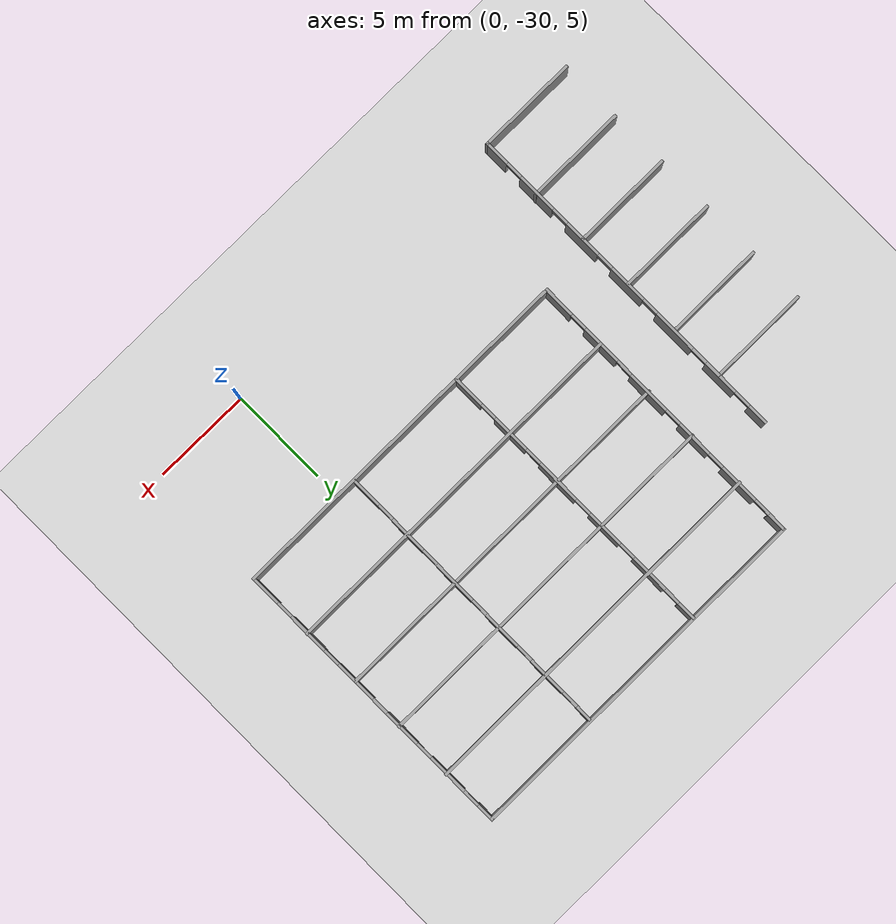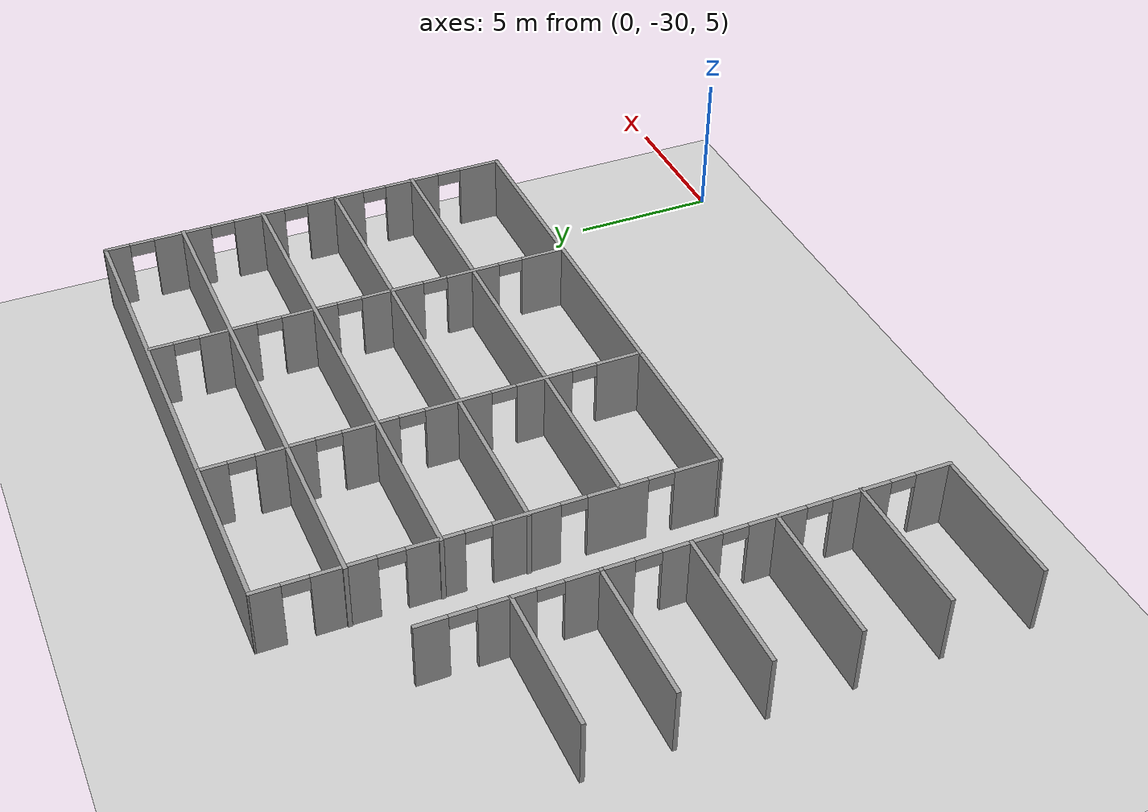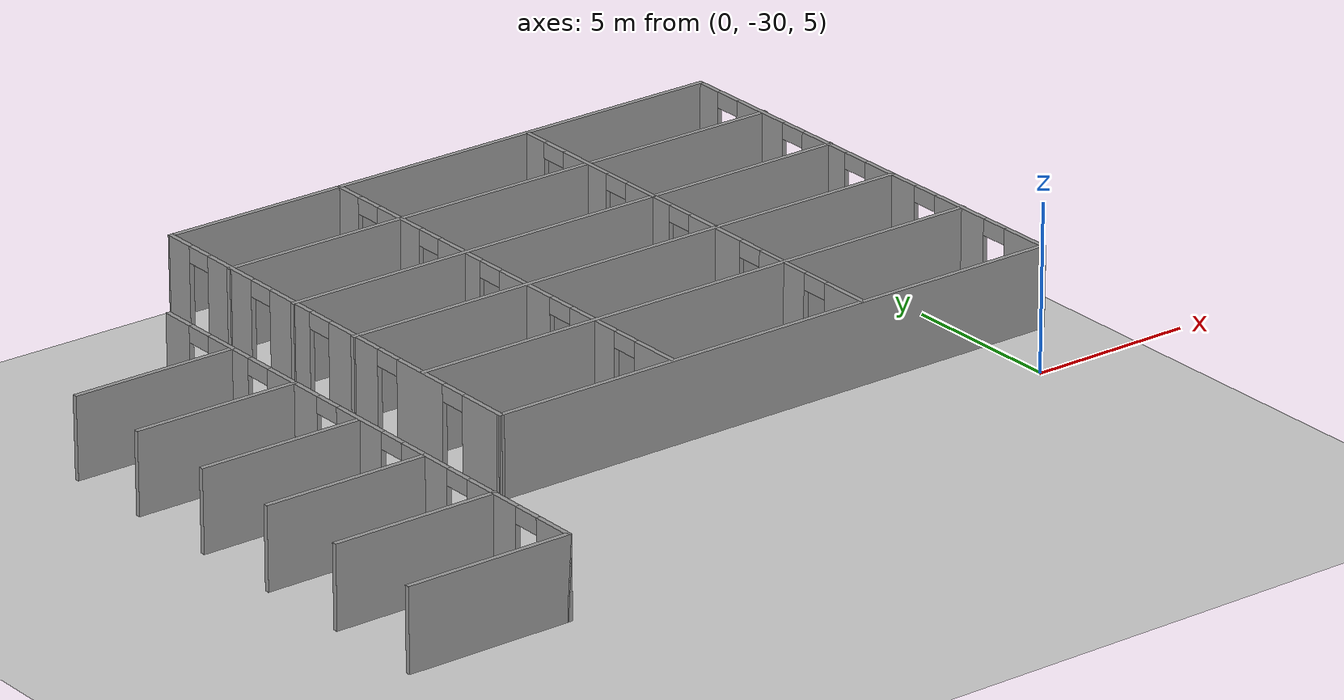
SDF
<sdf version="1.6">
 <world name="default">
  <model name="ground_plane">
   <static>1</static>
   <link name="link">
    <collision name="collision">
     <geometry><plane><normal>0 0 1</normal><size>100 100</size></plane></geometry>
     <surface>
      <contact><collide_bitmask>65535</collide_bitmask></contact>
      <friction><ode><mu>100</mu><mu2>50</mu2></ode></friction>
     </surface>
    </collision>
    <visual name="visual">
     <cast_shadows>0</cast_shadows>
     <geometry><plane><normal>0 0 1</normal><size>100 100</size></plane></geometry>
     <material>
      <script><uri>file://media/materials/scripts/gazebo.material</uri><name>Gazebo/Grey</name></script>
     </material>
    </visual>
   </link>
  </model>
  <model name="5x3_Cubicles_2">
   <pose>-4.05874 -15.979 2.74512 0 -0 0</pose>
   <link name="Wall_0">
    <pose>-9.39351 -0 0 0 -0 -1.57435</pose>
    <visual name="Wall_0_Visual_0">
     <pose>-7.27295 0 1.25 0 -0 0</pose>
     <geometry><box><size>1.03181 0.15 2.5</size></box></geometry>
     <material>
      <script><uri>file://media/materials/scripts/gazebo.material</uri><name>Gazebo/Grey</name></script>
      <ambient>1 1 1 1</ambient>
     </material>
     <meta><layer>0</layer></meta>
    </visual>
    <collision name="Wall_0_Collision_0">
     <geometry><box><size>1.03181 0.15 2.5</size></box></geometry>
     <pose>-7.27295 0 1.25 0 -0 0</pose>
    </collision>
    <visual name="Wall_0_Visual_1">
     <pose>-4.8086 0 1.25 0 -0 0</pose>
     <geometry><box><size>2.09689 0.15 2.5</size></box></geometry>
     <material>
      <script><uri>file://media/materials/scripts/gazebo.material</uri><name>Gazebo/Grey</name></script>
      <ambient>1 1 1 1</ambient>
     </material>
     <meta><layer>0</layer></meta>
    </visual>
    <collision name="Wall_0_Collision_1">
     <geometry><box><size>2.09689 0.15 2.5</size></box></geometry>
     <pose>-4.8086 0 1.25 0 -0 0</pose>
    </collision>
    <visual name="Wall_0_Visual_2">
     <pose>-1.91379 0 1.25 0 -0 0</pose>
     <geometry><box><size>1.89272 0.15 2.5</size></box></geometry>
     <material>
      <script><uri>file://media/materials/scripts/gazebo.material</uri><name>Gazebo/Grey</name></script>
      <ambient>1 1 1 1</ambient>
     </material>
     <meta><layer>0</layer></meta>
    </visual>
    <collision name="Wall_0_Collision_2">
     <geometry><box><size>1.89272 0.15 2.5</size></box></geometry>
     <pose>-1.91379 0 1.25 0 -0 0</pose>
    </collision>
    <visual name="Wall_0_Visual_3">
     <pose>1.06918 0 1.25 0 -0 0</pose>
     <geometry><box><size>2.27323 0.15 2.5</size></box></geometry>
     <material>
      <script><uri>file://media/materials/scripts/gazebo.material</uri><name>Gazebo/Grey</name></script>
      <ambient>1 1 1 1</ambient>
     </material>
     <meta><layer>0</layer></meta>
    </visual>
    <collision name="Wall_0_Collision_3">
     <geometry><box><size>2.27323 0.15 2.5</size></box></geometry>
     <pose>1.06918 0 1.25 0 -0 0</pose>
    </collision>
    <visual name="Wall_0_Visual_4">
     <pose>4.14705 0 1.25 0 -0 0</pose>
     <geometry><box><size>2.0825 0.15 2.5</size></box></geometry>
     <material>
      <script><uri>file://media/materials/scripts/gazebo.material</uri><name>Gazebo/Grey</name></script>
      <ambient>1 1 1 1</ambient>
     </material>
     <meta><layer>0</layer></meta>
    </visual>
    <collision name="Wall_0_Collision_4">
     <geometry><box><size>2.0825 0.15 2.5</size></box></geometry>
     <pose>4.14705 0 1.25 0 -0 0</pose>
    </collision>
    <visual name="Wall_0_Visual_5">
     <pose>6.93858 0 1.25 0 -0 0</pose>
     <geometry><box><size>1.70057 0.15 2.5</size></box></geometry>
     <material>
      <script><uri>file://media/materials/scripts/gazebo.material</uri><name>Gazebo/Grey</name></script>
      <ambient>1 1 1 1</ambient>
     </material>
     <meta><layer>0</layer></meta>
    </visual>
    <collision name="Wall_0_Collision_5">
     <geometry><box><size>1.70057 0.15 2.5</size></box></geometry>
     <pose>6.93858 0 1.25 0 -0 0</pose>
    </collision>
    <visual name="Wall_0_Visual_6">
     <pose>-6.30705 0 2.25 0 -0 0</pose>
     <geometry><box><size>0.9 0.15 0.5</size></box></geometry>
     <material>
      <script><uri>file://media/materials/scripts/gazebo.material</uri><name>Gazebo/Grey</name></script>
      <ambient>1 1 1 1</ambient>
     </material>
     <meta><layer>0</layer></meta>
    </visual>
    <collision name="Wall_0_Collision_6">
     <geometry><box><size>0.9 0.15 0.5</size></box></geometry>
     <pose>-6.30705 0 2.25 0 -0 0</pose>
    </collision>
    <visual name="Wall_0_Visual_7">
     <pose>-3.31016 0 2.25 0 -0 0</pose>
     <geometry><box><size>0.9 0.15 0.5</size></box></geometry>
     <material>
      <script><uri>file://media/materials/scripts/gazebo.material</uri><name>Gazebo/Grey</name></script>
      <ambient>1 1 1 1</ambient>
     </material>
     <meta><layer>0</layer></meta>
    </visual>
    <collision name="Wall_0_Collision_7">
     <geometry><box><size>0.9 0.15 0.5</size></box></geometry>
     <pose>-3.31016 0 2.25 0 -0 0</pose>
    </collision>
    <visual name="Wall_0_Visual_8">
     <pose>-0.517433 0 2.25 0 -0 0</pose>
     <geometry><box><size>0.9 0.15 0.5</size></box></geometry>
     <material>
      <script><uri>file://media/materials/scripts/gazebo.material</uri><name>Gazebo/Grey</name></script>
      <ambient>1 1 1 1</ambient>
     </material>
     <meta><layer>0</layer></meta>
    </visual>
    <collision name="Wall_0_Collision_8">
     <geometry><box><size>0.9 0.15 0.5</size></box></geometry>
     <pose>-0.517433 0 2.25 0 -0 0</pose>
    </collision>
    <visual name="Wall_0_Visual_9">
     <pose>2.6558 0 2.25 0 -0 0</pose>
     <geometry><box><size>0.9 0.15 0.5</size></box></geometry>
     <material>
      <script><uri>file://media/materials/scripts/gazebo.material</uri><name>Gazebo/Grey</name></script>
      <ambient>1 1 1 1</ambient>
     </material>
     <meta><layer>0</layer></meta>
    </visual>
    <collision name="Wall_0_Collision_9">
     <geometry><box><size>0.9 0.15 0.5</size></box></geometry>
     <pose>2.6558 0 2.25 0 -0 0</pose>
    </collision>
    <visual name="Wall_0_Visual_10">
     <pose>5.63829 0 2.25 0 -0 0</pose>
     <geometry><box><size>0.9 0.15 0.5</size></box></geometry>
     <material>
      <script><uri>file://media/materials/scripts/gazebo.material</uri><name>Gazebo/Grey</name></script>
      <ambient>1 1 1 1</ambient>
     </material>
     <meta><layer>0</layer></meta>
    </visual>
    <collision name="Wall_0_Collision_10">
     <geometry><box><size>0.9 0.15 0.5</size></box></geometry>
     <pose>5.63829 0 2.25 0 -0 0</pose>
    </collision>
   </link>
   <link name="Wall_10">
    <collision name="Wall_10_Collision">
     <geometry><box><size>19 0.15 2.5</size></box></geometry>
     <pose>0 0 1.25 0 -0 0</pose>
    </collision>
    <visual name="Wall_10_Visual">
     <pose>0 0 1.25 0 -0 0</pose>
     <geometry><box><size>19 0.15 2.5</size></box></geometry>
     <material>
      <script><uri>file://media/materials/scripts/gazebo.material</uri><name>Gazebo/Grey</name></script>
      <ambient>1 1 1 1</ambient>
     </material>
     <meta><layer>0</layer></meta>
    </visual>
    <pose>-0 1.73972 0 0 -0 0</pose>
   </link>
   <link name="Wall_12">
    <collision name="Wall_12_Collision">
     <geometry><box><size>19 0.15 2.5</size></box></geometry>
     <pose>0 0 1.25 0 -0 0</pose>
    </collision>
    <visual name="Wall_12_Visual">
     <pose>0 0 1.25 0 -0 0</pose>
     <geometry><box><size>19 0.15 2.5</size></box></geometry>
     <material>
      <script><uri>file://media/materials/scripts/gazebo.material</uri><name>Gazebo/Grey</name></script>
      <ambient>1 1 1 1</ambient>
     </material>
     <meta><layer>0</layer></meta>
    </visual>
    <pose>0.002757 4.78648 0 0 -0 0</pose>
   </link>
   <link name="Wall_14">
    <pose>3.03244 -0.038205 0 0 -0 -1.57332</pose>
    <visual name="Wall_14_Visual_0">
     <pose>-7.27661 0 1.25 0 -0 0</pose>
     <geometry><box><size>0.887786 0.15 2.5</size></box></geometry>
     <material>
      <script><uri>file://media/materials/scripts/gazebo.material</uri><name>Gazebo/Grey</name></script>
      <ambient>1 1 1 1</ambient>
     </material>
     <meta><layer>0</layer></meta>
    </visual>
    <collision name="Wall_14_Collision_0">
     <geometry><box><size>0.887786 0.15 2.5</size></box></geometry>
     <pose>-7.27661 0 1.25 0 -0 0</pose>
    </collision>
    <visual name="Wall_14_Visual_1">
     <pose>-4.91212 0 1.25 0 -0 0</pose>
     <geometry><box><size>2.04118 0.15 2.5</size></box></geometry>
     <material>
      <script><uri>file://media/materials/scripts/gazebo.material</uri><name>Gazebo/Grey</name></script>
      <ambient>1 1 1 1</ambient>
     </material>
     <meta><layer>0</layer></meta>
    </visual>
    <collision name="Wall_14_Collision_1">
     <geometry><box><size>2.04118 0.15 2.5</size></box></geometry>
     <pose>-4.91212 0 1.25 0 -0 0</pose>
    </collision>
    <visual name="Wall_14_Visual_2">
     <pose>-1.97726 0 1.25 0 -0 0</pose>
     <geometry><box><size>2.02854 0.15 2.5</size></box></geometry>
     <material>
      <script><uri>file://media/materials/scripts/gazebo.material</uri><name>Gazebo/Grey</name></script>
      <ambient>1 1 1 1</ambient>
     </material>
     <meta><layer>0</layer></meta>
    </visual>
    <collision name="Wall_14_Collision_2">
     <geometry><box><size>2.02854 0.15 2.5</size></box></geometry>
     <pose>-1.97726 0 1.25 0 -0 0</pose>
    </collision>
    <visual name="Wall_14_Visual_3">
     <pose>1.09454 0 1.25 0 -0 0</pose>
     <geometry><box><size>2.31505 0.15 2.5</size></box></geometry>
     <material>
      <script><uri>file://media/materials/scripts/gazebo.material</uri><name>Gazebo/Grey</name></script>
      <ambient>1 1 1 1</ambient>
     </material>
     <meta><layer>0</layer></meta>
    </visual>
    <collision name="Wall_14_Collision_3">
     <geometry><box><size>2.31505 0.15 2.5</size></box></geometry>
     <pose>1.09454 0 1.25 0 -0 0</pose>
    </collision>
    <visual name="Wall_14_Visual_4">
     <pose>4.15071 0 1.25 0 -0 0</pose>
     <geometry><box><size>1.9973 0.15 2.5</size></box></geometry>
     <material>
      <script><uri>file://media/materials/scripts/gazebo.material</uri><name>Gazebo/Grey</name></script>
      <ambient>1 1 1 1</ambient>
     </material>
     <meta><layer>0</layer></meta>
    </visual>
    <collision name="Wall_14_Collision_4">
     <geometry><box><size>1.9973 0.15 2.5</size></box></geometry>
     <pose>4.15071 0 1.25 0 -0 0</pose>
    </collision>
    <visual name="Wall_14_Visual_5">
     <pose>6.88493 0 1.25 0 -0 0</pose>
     <geometry><box><size>1.67114 0.15 2.5</size></box></geometry>
     <material>
      <script><uri>file://media/materials/scripts/gazebo.material</uri><name>Gazebo/Grey</name></script>
      <ambient>1 1 1 1</ambient>
     </material>
     <meta><layer>0</layer></meta>
    </visual>
    <collision name="Wall_14_Collision_5">
     <geometry><box><size>1.67114 0.15 2.5</size></box></geometry>
     <pose>6.88493 0 1.25 0 -0 0</pose>
    </collision>
    <visual name="Wall_14_Visual_6">
     <pose>-6.38271 0 2.25 0 -0 0</pose>
     <geometry><box><size>0.9 0.15 0.5</size></box></geometry>
     <material>
      <script><uri>file://media/materials/scripts/gazebo.material</uri><name>Gazebo/Grey</name></script>
      <ambient>1 1 1 1</ambient>
     </material>
     <meta><layer>0</layer></meta>
    </visual>
    <collision name="Wall_14_Collision_6">
     <geometry><box><size>0.9 0.15 0.5</size></box></geometry>
     <pose>-6.38271 0 2.25 0 -0 0</pose>
    </collision>
    <visual name="Wall_14_Visual_7">
     <pose>-3.44153 0 2.25 0 -0 0</pose>
     <geometry><box><size>0.9 0.15 0.5</size></box></geometry>
     <material>
      <script><uri>file://media/materials/scripts/gazebo.material</uri><name>Gazebo/Grey</name></script>
      <ambient>1 1 1 1</ambient>
     </material>
     <meta><layer>0</layer></meta>
    </visual>
    <collision name="Wall_14_Collision_7">
     <geometry><box><size>0.9 0.15 0.5</size></box></geometry>
     <pose>-3.44153 0 2.25 0 -0 0</pose>
    </collision>
    <visual name="Wall_14_Visual_8">
     <pose>-0.512986 0 2.25 0 -0 0</pose>
     <geometry><box><size>0.9 0.15 0.5</size></box></geometry>
     <material>
      <script><uri>file://media/materials/scripts/gazebo.material</uri><name>Gazebo/Grey</name></script>
      <ambient>1 1 1 1</ambient>
     </material>
     <meta><layer>0</layer></meta>
    </visual>
    <collision name="Wall_14_Collision_8">
     <geometry><box><size>0.9 0.15 0.5</size></box></geometry>
     <pose>-0.512986 0 2.25 0 -0 0</pose>
    </collision>
    <visual name="Wall_14_Visual_9">
     <pose>2.70206 0 2.25 0 -0 0</pose>
     <geometry><box><size>0.9 0.15 0.5</size></box></geometry>
     <material>
      <script><uri>file://media/materials/scripts/gazebo.material</uri><name>Gazebo/Grey</name></script>
      <ambient>1 1 1 1</ambient>
     </material>
     <meta><layer>0</layer></meta>
    </visual>
    <collision name="Wall_14_Collision_9">
     <geometry><box><size>0.9 0.15 0.5</size></box></geometry>
     <pose>2.70206 0 2.25 0 -0 0</pose>
    </collision>
    <visual name="Wall_14_Visual_10">
     <pose>5.59936 0 2.25 0 -0 0</pose>
     <geometry><box><size>0.9 0.15 0.5</size></box></geometry>
     <material>
      <script><uri>file://media/materials/scripts/gazebo.material</uri><name>Gazebo/Grey</name></script>
      <ambient>1 1 1 1</ambient>
     </material>
     <meta><layer>0</layer></meta>
    </visual>
    <collision name="Wall_14_Collision_10">
     <geometry><box><size>0.9 0.15 0.5</size></box></geometry>
     <pose>5.59936 0 2.25 0 -0 0</pose>
    </collision>
   </link>
   <link name="Wall_16">
    <pose>-3.57321 -0.011645 0 0 -0 -1.5708</pose>
    <visual name="Wall_16_Visual_0">
     <pose>-7.25015 0 1.25 0 -0 0</pose>
     <geometry><box><size>0.999697 0.15 2.5</size></box></geometry>
     <material>
      <script><uri>file://media/materials/scripts/gazebo.material</uri><name>Gazebo/Grey</name></script>
      <ambient>1 1 1 1</ambient>
     </material>
     <meta><layer>0</layer></meta>
    </visual>
    <collision name="Wall_16_Collision_0">
     <geometry><box><size>0.999697 0.15 2.5</size></box></geometry>
     <pose>-7.25015 0 1.25 0 -0 0</pose>
    </collision>
    <visual name="Wall_16_Visual_1">
     <pose>-4.84832 0 1.25 0 -0 0</pose>
     <geometry><box><size>2.00397 0.15 2.5</size></box></geometry>
     <material>
      <script><uri>file://media/materials/scripts/gazebo.material</uri><name>Gazebo/Grey</name></script>
      <ambient>1 1 1 1</ambient>
     </material>
     <meta><layer>0</layer></meta>
    </visual>
    <collision name="Wall_16_Collision_1">
     <geometry><box><size>2.00397 0.15 2.5</size></box></geometry>
     <pose>-4.84832 0 1.25 0 -0 0</pose>
    </collision>
    <visual name="Wall_16_Visual_2">
     <pose>-1.97337 0 1.25 0 -0 0</pose>
     <geometry><box><size>1.94594 0.15 2.5</size></box></geometry>
     <material>
      <script><uri>file://media/materials/scripts/gazebo.material</uri><name>Gazebo/Grey</name></script>
      <ambient>1 1 1 1</ambient>
     </material>
     <meta><layer>0</layer></meta>
    </visual>
    <collision name="Wall_16_Collision_2">
     <geometry><box><size>1.94594 0.15 2.5</size></box></geometry>
     <pose>-1.97337 0 1.25 0 -0 0</pose>
    </collision>
    <visual name="Wall_16_Visual_3">
     <pose>1.06765 0 1.25 0 -0 0</pose>
     <geometry><box><size>2.3361 0.15 2.5</size></box></geometry>
     <material>
      <script><uri>file://media/materials/scripts/gazebo.material</uri><name>Gazebo/Grey</name></script>
      <ambient>1 1 1 1</ambient>
     </material>
     <meta><layer>0</layer></meta>
    </visual>
    <collision name="Wall_16_Collision_3">
     <geometry><box><size>2.3361 0.15 2.5</size></box></geometry>
     <pose>1.06765 0 1.25 0 -0 0</pose>
    </collision>
    <visual name="Wall_16_Visual_4">
     <pose>4.14512 0 1.25 0 -0 0</pose>
     <geometry><box><size>2.01884 0.15 2.5</size></box></geometry>
     <material>
      <script><uri>file://media/materials/scripts/gazebo.material</uri><name>Gazebo/Grey</name></script>
      <ambient>1 1 1 1</ambient>
     </material>
     <meta><layer>0</layer></meta>
    </visual>
    <collision name="Wall_16_Collision_4">
     <geometry><box><size>2.01884 0.15 2.5</size></box></geometry>
     <pose>4.14512 0 1.25 0 -0 0</pose>
    </collision>
    <visual name="Wall_16_Visual_5">
     <pose>6.90227 0 1.25 0 -0 0</pose>
     <geometry><box><size>1.69546 0.15 2.5</size></box></geometry>
     <material>
      <script><uri>file://media/materials/scripts/gazebo.material</uri><name>Gazebo/Grey</name></script>
      <ambient>1 1 1 1</ambient>
     </material>
     <meta><layer>0</layer></meta>
    </visual>
    <collision name="Wall_16_Collision_5">
     <geometry><box><size>1.69546 0.15 2.5</size></box></geometry>
     <pose>6.90227 0 1.25 0 -0 0</pose>
    </collision>
    <visual name="Wall_16_Visual_6">
     <pose>-6.3003 0 2.25 0 -0 0</pose>
     <geometry><box><size>0.9 0.15 0.5</size></box></geometry>
     <material>
      <script><uri>file://media/materials/scripts/gazebo.material</uri><name>Gazebo/Grey</name></script>
      <ambient>1 1 1 1</ambient>
     </material>
     <meta><layer>0</layer></meta>
    </visual>
    <collision name="Wall_16_Collision_6">
     <geometry><box><size>0.9 0.15 0.5</size></box></geometry>
     <pose>-6.3003 0 2.25 0 -0 0</pose>
    </collision>
    <visual name="Wall_16_Visual_7">
     <pose>-3.39634 0 2.25 0 -0 0</pose>
     <geometry><box><size>0.9 0.15 0.5</size></box></geometry>
     <material>
      <script><uri>file://media/materials/scripts/gazebo.material</uri><name>Gazebo/Grey</name></script>
      <ambient>1 1 1 1</ambient>
     </material>
     <meta><layer>0</layer></meta>
    </visual>
    <collision name="Wall_16_Collision_7">
     <geometry><box><size>0.9 0.15 0.5</size></box></geometry>
     <pose>-3.39634 0 2.25 0 -0 0</pose>
    </collision>
    <visual name="Wall_16_Visual_8">
     <pose>-0.5504 0 2.25 0 -0 0</pose>
     <geometry><box><size>0.9 0.15 0.5</size></box></geometry>
     <material>
      <script><uri>file://media/materials/scripts/gazebo.material</uri><name>Gazebo/Grey</name></script>
      <ambient>1 1 1 1</ambient>
     </material>
     <meta><layer>0</layer></meta>
    </visual>
    <collision name="Wall_16_Collision_8">
     <geometry><box><size>0.9 0.15 0.5</size></box></geometry>
     <pose>-0.5504 0 2.25 0 -0 0</pose>
    </collision>
    <visual name="Wall_16_Visual_9">
     <pose>2.6857 0 2.25 0 -0 0</pose>
     <geometry><box><size>0.9 0.15 0.5</size></box></geometry>
     <material>
      <script><uri>file://media/materials/scripts/gazebo.material</uri><name>Gazebo/Grey</name></script>
      <ambient>1 1 1 1</ambient>
     </material>
     <meta><layer>0</layer></meta>
    </visual>
    <collision name="Wall_16_Collision_9">
     <geometry><box><size>0.9 0.15 0.5</size></box></geometry>
     <pose>2.6857 0 2.25 0 -0 0</pose>
    </collision>
    <visual name="Wall_16_Visual_10">
     <pose>5.60454 0 2.25 0 -0 0</pose>
     <geometry><box><size>0.9 0.15 0.5</size></box></geometry>
     <material>
      <script><uri>file://media/materials/scripts/gazebo.material</uri><name>Gazebo/Grey</name></script>
      <ambient>1 1 1 1</ambient>
     </material>
     <meta><layer>0</layer></meta>
    </visual>
    <collision name="Wall_16_Collision_10">
     <geometry><box><size>0.9 0.15 0.5</size></box></geometry>
     <pose>5.60454 0 2.25 0 -0 0</pose>
    </collision>
   </link>
   <link name="Wall_2">
    <collision name="Wall_2_Collision">
     <geometry><box><size>19 0.15 2.5</size></box></geometry>
     <pose>0 0 1.25 0 -0 0</pose>
    </collision>
    <visual name="Wall_2_Visual">
     <pose>0 0 1.25 0 -0 0</pose>
     <geometry><box><size>19 0.15 2.5</size></box></geometry>
     <material>
      <script><uri>file://media/materials/scripts/gazebo.material</uri><name>Gazebo/Grey</name></script>
      <ambient>1 1 1 1</ambient>
     </material>
     <meta><layer>0</layer></meta>
    </visual>
    <pose>0.004043 -7.71378 0 0 -0 0</pose>
   </link>
   <link name="Wall_3">
    <pose>9.40486 -0.007207 0 0 -0 1.57394</pose>
    <visual name="Wall_3_Visual_0">
     <pose>-6.96276 0 1.25 0 -0 0</pose>
     <geometry><box><size>1.63776 0.15 2.5</size></box></geometry>
     <material>
      <script><uri>file://media/materials/scripts/gazebo.material</uri><name>Gazebo/Grey</name></script>
      <ambient>1 1 1 1</ambient>
     </material>
     <meta><layer>0</layer></meta>
    </visual>
    <collision name="Wall_3_Collision_0">
     <geometry><box><size>1.63776 0.15 2.5</size></box></geometry>
     <pose>-6.96276 0 1.25 0 -0 0</pose>
    </collision>
    <visual name="Wall_3_Visual_1">
     <pose>-4.17068 0 1.25 0 -0 0</pose>
     <geometry><box><size>2.14639 0.15 2.5</size></box></geometry>
     <material>
      <script><uri>file://media/materials/scripts/gazebo.material</uri><name>Gazebo/Grey</name></script>
      <ambient>1 1 1 1</ambient>
     </material>
     <meta><layer>0</layer></meta>
    </visual>
    <collision name="Wall_3_Collision_1">
     <geometry><box><size>2.14639 0.15 2.5</size></box></geometry>
     <pose>-4.17068 0 1.25 0 -0 0</pose>
    </collision>
    <visual name="Wall_3_Visual_2">
     <pose>-1.08256 0 1.25 0 -0 0</pose>
     <geometry><box><size>2.22987 0.15 2.5</size></box></geometry>
     <material>
      <script><uri>file://media/materials/scripts/gazebo.material</uri><name>Gazebo/Grey</name></script>
      <ambient>1 1 1 1</ambient>
     </material>
     <meta><layer>0</layer></meta>
    </visual>
    <collision name="Wall_3_Collision_2">
     <geometry><box><size>2.22987 0.15 2.5</size></box></geometry>
     <pose>-1.08256 0 1.25 0 -0 0</pose>
    </collision>
    <visual name="Wall_3_Visual_3">
     <pose>1.90922 0 1.25 0 -0 0</pose>
     <geometry><box><size>1.95369 0.15 2.5</size></box></geometry>
     <material>
      <script><uri>file://media/materials/scripts/gazebo.material</uri><name>Gazebo/Grey</name></script>
      <ambient>1 1 1 1</ambient>
     </material>
     <meta><layer>0</layer></meta>
    </visual>
    <collision name="Wall_3_Collision_3">
     <geometry><box><size>1.95369 0.15 2.5</size></box></geometry>
     <pose>1.90922 0 1.25 0 -0 0</pose>
    </collision>
    <visual name="Wall_3_Visual_4">
     <pose>4.85258 0 1.25 0 -0 0</pose>
     <geometry><box><size>2.13302 0.15 2.5</size></box></geometry>
     <material>
      <script><uri>file://media/materials/scripts/gazebo.material</uri><name>Gazebo/Grey</name></script>
      <ambient>1 1 1 1</ambient>
     </material>
     <meta><layer>0</layer></meta>
    </visual>
    <collision name="Wall_3_Collision_4">
     <geometry><box><size>2.13302 0.15 2.5</size></box></geometry>
     <pose>4.85258 0 1.25 0 -0 0</pose>
    </collision>
    <visual name="Wall_3_Visual_5">
     <pose>7.30037 0 1.25 0 -0 0</pose>
     <geometry><box><size>0.962557 0.15 2.5</size></box></geometry>
     <material>
      <script><uri>file://media/materials/scripts/gazebo.material</uri><name>Gazebo/Grey</name></script>
      <ambient>1 1 1 1</ambient>
     </material>
     <meta><layer>0</layer></meta>
    </visual>
    <collision name="Wall_3_Collision_5">
     <geometry><box><size>0.962557 0.15 2.5</size></box></geometry>
     <pose>7.30037 0 1.25 0 -0 0</pose>
    </collision>
    <visual name="Wall_3_Visual_6">
     <pose>-5.69388 0 2.25 0 -0 0</pose>
     <geometry><box><size>0.9 0.15 0.5</size></box></geometry>
     <material>
      <script><uri>file://media/materials/scripts/gazebo.material</uri><name>Gazebo/Grey</name></script>
      <ambient>1 1 1 1</ambient>
     </material>
     <meta><layer>0</layer></meta>
    </visual>
    <collision name="Wall_3_Collision_6">
     <geometry><box><size>0.9 0.15 0.5</size></box></geometry>
     <pose>-5.69388 0 2.25 0 -0 0</pose>
    </collision>
    <visual name="Wall_3_Visual_7">
     <pose>-2.64749 0 2.25 0 -0 0</pose>
     <geometry><box><size>0.9 0.15 0.5</size></box></geometry>
     <material>
      <script><uri>file://media/materials/scripts/gazebo.material</uri><name>Gazebo/Grey</name></script>
      <ambient>1 1 1 1</ambient>
     </material>
     <meta><layer>0</layer></meta>
    </visual>
    <collision name="Wall_3_Collision_7">
     <geometry><box><size>0.9 0.15 0.5</size></box></geometry>
     <pose>-2.64749 0 2.25 0 -0 0</pose>
    </collision>
    <visual name="Wall_3_Visual_8">
     <pose>0.482376 0 2.25 0 -0 0</pose>
     <geometry><box><size>0.9 0.15 0.5</size></box></geometry>
     <material>
      <script><uri>file://media/materials/scripts/gazebo.material</uri><name>Gazebo/Grey</name></script>
      <ambient>1 1 1 1</ambient>
     </material>
     <meta><layer>0</layer></meta>
    </visual>
    <collision name="Wall_3_Collision_8">
     <geometry><box><size>0.9 0.15 0.5</size></box></geometry>
     <pose>0.482376 0 2.25 0 -0 0</pose>
    </collision>
    <visual name="Wall_3_Visual_9">
     <pose>3.33607 0 2.25 0 -0 0</pose>
     <geometry><box><size>0.9 0.15 0.5</size></box></geometry>
     <material>
      <script><uri>file://media/materials/scripts/gazebo.material</uri><name>Gazebo/Grey</name></script>
      <ambient>1 1 1 1</ambient>
     </material>
     <meta><layer>0</layer></meta>
    </visual>
    <collision name="Wall_3_Collision_9">
     <geometry><box><size>0.9 0.15 0.5</size></box></geometry>
     <pose>3.33607 0 2.25 0 -0 0</pose>
    </collision>
    <visual name="Wall_3_Visual_10">
     <pose>6.36909 0 2.25 0 -0 0</pose>
     <geometry><box><size>0.9 0.15 0.5</size></box></geometry>
     <material>
      <script><uri>file://media/materials/scripts/gazebo.material</uri><name>Gazebo/Grey</name></script>
      <ambient>1 1 1 1</ambient>
     </material>
     <meta><layer>0</layer></meta>
    </visual>
    <collision name="Wall_3_Collision_10">
     <geometry><box><size>0.9 0.15 0.5</size></box></geometry>
     <pose>6.36909 0 2.25 0 -0 0</pose>
    </collision>
   </link>
   <link name="Wall_4">
    <collision name="Wall_4_Collision">
     <geometry><box><size>18.8967 0.15 2.5</size></box></geometry>
     <pose>0 0 1.25 0 -0 0</pose>
    </collision>
    <visual name="Wall_4_Visual">
     <pose>0 0 1.25 0 -0 0</pose>
     <geometry><box><size>18.8967 0.15 2.5</size></box></geometry>
     <material>
      <script><uri>file://media/materials/scripts/gazebo.material</uri><name>Gazebo/Grey</name></script>
      <ambient>1 1 1 1</ambient>
     </material>
     <meta><layer>0</layer></meta>
    </visual>
    <pose>0.0073 7.70657 0 0 -0 3.14082</pose>
   </link>
   <link name="Wall_6">
    <collision name="Wall_6_Collision">
     <geometry><box><size>19 0.15 2.5</size></box></geometry>
     <pose>0 0 1.25 0 -0 0</pose>
    </collision>
    <visual name="Wall_6_Visual">
     <pose>0 0 1.25 0 -0 0</pose>
     <geometry><box><size>19 0.15 2.5</size></box></geometry>
     <material>
      <script><uri>file://media/materials/scripts/gazebo.material</uri><name>Gazebo/Grey</name></script>
      <ambient>1 1 1 1</ambient>
     </material>
     <meta><layer>0</layer></meta>
    </visual>
    <pose>0.024186 -4.2101 0 0 -0 0</pose>
   </link>
   <link name="Wall_8">
    <collision name="Wall_8_Collision">
     <geometry><box><size>19 0.15 2.5</size></box></geometry>
     <pose>0 0 1.25 0 -0 0</pose>
    </collision>
    <visual name="Wall_8_Visual">
     <pose>0 0 1.25 0 -0 0</pose>
     <geometry><box><size>19 0.15 2.5</size></box></geometry>
     <material>
      <script><uri>file://media/materials/scripts/gazebo.material</uri><name>Gazebo/Grey</name></script>
      <ambient>1 1 1 1</ambient>
     </material>
     <meta><layer>0</layer></meta>
    </visual>
    <pose>-0.024187 -1.11426 0 0 -0 0</pose>
   </link>
   <static>1</static>
  </model>
  <model name="6_cubicles_0">
   <pose>-18.8706 -21.387 2.53743 0 -0 0</pose>
   <link name="Wall_18">
    <pose>2.54311 0 0 0 -0 -1.5708</pose>
    <visual name="Wall_18_Visual_0">
     <pose>-8.56856 0 1.25 0 -0 0</pose>
     <geometry><box><size>1.11288 0.15 2.5</size></box></geometry>
     <material>
      <script><uri>file://media/materials/scripts/gazebo.material</uri><name>Gazebo/Grey</name></script>
      <ambient>1 1 1 1</ambient>
     </material>
     <meta><layer>0</layer></meta>
    </visual>
    <collision name="Wall_18_Collision_0">
     <geometry><box><size>1.11288 0.15 2.5</size></box></geometry>
     <pose>-8.56856 0 1.25 0 -0 0</pose>
    </collision>
    <visual name="Wall_18_Visual_1">
     <pose>-6.16963 0 1.25 0 -0 0</pose>
     <geometry><box><size>1.885 0.15 2.5</size></box></geometry>
     <material>
      <script><uri>file://media/materials/scripts/gazebo.material</uri><name>Gazebo/Grey</name></script>
      <ambient>1 1 1 1</ambient>
     </material>
     <meta><layer>0</layer></meta>
    </visual>
    <collision name="Wall_18_Collision_1">
     <geometry><box><size>1.885 0.15 2.5</size></box></geometry>
     <pose>-6.16963 0 1.25 0 -0 0</pose>
    </collision>
    <visual name="Wall_18_Visual_2">
     <pose>-3.1748 0 1.25 0 -0 0</pose>
     <geometry><box><size>2.30465 0.15 2.5</size></box></geometry>
     <material>
      <script><uri>file://media/materials/scripts/gazebo.material</uri><name>Gazebo/Grey</name></script>
      <ambient>1 1 1 1</ambient>
     </material>
     <meta><layer>0</layer></meta>
    </visual>
    <collision name="Wall_18_Collision_2">
     <geometry><box><size>2.30465 0.15 2.5</size></box></geometry>
     <pose>-3.1748 0 1.25 0 -0 0</pose>
    </collision>
    <visual name="Wall_18_Visual_3">
     <pose>-0.103676 0 1.25 0 -0 0</pose>
     <geometry><box><size>2.0376 0.15 2.5</size></box></geometry>
     <material>
      <script><uri>file://media/materials/scripts/gazebo.material</uri><name>Gazebo/Grey</name></script>
      <ambient>1 1 1 1</ambient>
     </material>
     <meta><layer>0</layer></meta>
    </visual>
    <collision name="Wall_18_Collision_3">
     <geometry><box><size>2.0376 0.15 2.5</size></box></geometry>
     <pose>-0.103676 0 1.25 0 -0 0</pose>
    </collision>
    <visual name="Wall_18_Visual_4">
     <pose>2.83392 0 1.25 0 -0 0</pose>
     <geometry><box><size>2.0376 0.15 2.5</size></box></geometry>
     <material>
      <script><uri>file://media/materials/scripts/gazebo.material</uri><name>Gazebo/Grey</name></script>
      <ambient>1 1 1 1</ambient>
     </material>
     <meta><layer>0</layer></meta>
    </visual>
    <collision name="Wall_18_Collision_4">
     <geometry><box><size>2.0376 0.15 2.5</size></box></geometry>
     <pose>2.83392 0 1.25 0 -0 0</pose>
    </collision>
    <visual name="Wall_18_Visual_5">
     <pose>5.80967 0 1.25 0 -0 0</pose>
     <geometry><box><size>2.1139 0.15 2.5</size></box></geometry>
     <material>
      <script><uri>file://media/materials/scripts/gazebo.material</uri><name>Gazebo/Grey</name></script>
      <ambient>1 1 1 1</ambient>
     </material>
     <meta><layer>0</layer></meta>
    </visual>
    <collision name="Wall_18_Collision_5">
     <geometry><box><size>2.1139 0.15 2.5</size></box></geometry>
     <pose>5.80967 0 1.25 0 -0 0</pose>
    </collision>
    <visual name="Wall_18_Visual_6">
     <pose>8.44581 0 1.25 0 -0 0</pose>
     <geometry><box><size>1.35838 0.15 2.5</size></box></geometry>
     <material>
      <script><uri>file://media/materials/scripts/gazebo.material</uri><name>Gazebo/Grey</name></script>
      <ambient>1 1 1 1</ambient>
     </material>
     <meta><layer>0</layer></meta>
    </visual>
    <collision name="Wall_18_Collision_6">
     <geometry><box><size>1.35838 0.15 2.5</size></box></geometry>
     <pose>8.44581 0 1.25 0 -0 0</pose>
    </collision>
    <visual name="Wall_18_Visual_7">
     <pose>-7.56212 0 2.25 0 -0 0</pose>
     <geometry><box><size>0.9 0.15 0.5</size></box></geometry>
     <material>
      <script><uri>file://media/materials/scripts/gazebo.material</uri><name>Gazebo/Grey</name></script>
      <ambient>1 1 1 1</ambient>
     </material>
     <meta><layer>0</layer></meta>
    </visual>
    <collision name="Wall_18_Collision_7">
     <geometry><box><size>0.9 0.15 0.5</size></box></geometry>
     <pose>-7.56212 0 2.25 0 -0 0</pose>
    </collision>
    <visual name="Wall_18_Visual_8">
     <pose>-4.77713 0 2.25 0 -0 0</pose>
     <geometry><box><size>0.9 0.15 0.5</size></box></geometry>
     <material>
      <script><uri>file://media/materials/scripts/gazebo.material</uri><name>Gazebo/Grey</name></script>
      <ambient>1 1 1 1</ambient>
     </material>
     <meta><layer>0</layer></meta>
    </visual>
    <collision name="Wall_18_Collision_8">
     <geometry><box><size>0.9 0.15 0.5</size></box></geometry>
     <pose>-4.77713 0 2.25 0 -0 0</pose>
    </collision>
    <visual name="Wall_18_Visual_9">
     <pose>-1.57248 0 2.25 0 -0 0</pose>
     <geometry><box><size>0.9 0.15 0.5</size></box></geometry>
     <material>
      <script><uri>file://media/materials/scripts/gazebo.material</uri><name>Gazebo/Grey</name></script>
      <ambient>1 1 1 1</ambient>
     </material>
     <meta><layer>0</layer></meta>
    </visual>
    <collision name="Wall_18_Collision_9">
     <geometry><box><size>0.9 0.15 0.5</size></box></geometry>
     <pose>-1.57248 0 2.25 0 -0 0</pose>
    </collision>
    <visual name="Wall_18_Visual_10">
     <pose>1.36512 0 2.25 0 -0 0</pose>
     <geometry><box><size>0.9 0.15 0.5</size></box></geometry>
     <material>
      <script><uri>file://media/materials/scripts/gazebo.material</uri><name>Gazebo/Grey</name></script>
      <ambient>1 1 1 1</ambient>
     </material>
     <meta><layer>0</layer></meta>
    </visual>
    <collision name="Wall_18_Collision_10">
     <geometry><box><size>0.9 0.15 0.5</size></box></geometry>
     <pose>1.36512 0 2.25 0 -0 0</pose>
    </collision>
    <visual name="Wall_18_Visual_11">
     <pose>4.30272 0 2.25 0 -0 0</pose>
     <geometry><box><size>0.9 0.15 0.5</size></box></geometry>
     <material>
      <script><uri>file://media/materials/scripts/gazebo.material</uri><name>Gazebo/Grey</name></script>
      <ambient>1 1 1 1</ambient>
     </material>
     <meta><layer>0</layer></meta>
    </visual>
    <collision name="Wall_18_Collision_11">
     <geometry><box><size>0.9 0.15 0.5</size></box></geometry>
     <pose>4.30272 0 2.25 0 -0 0</pose>
    </collision>
    <visual name="Wall_18_Visual_12">
     <pose>7.31662 0 2.25 0 -0 0</pose>
     <geometry><box><size>0.9 0.15 0.5</size></box></geometry>
     <material>
      <script><uri>file://media/materials/scripts/gazebo.material</uri><name>Gazebo/Grey</name></script>
      <ambient>1 1 1 1</ambient>
     </material>
     <meta><layer>0</layer></meta>
    </visual>
    <collision name="Wall_18_Collision_12">
     <geometry><box><size>0.9 0.15 0.5</size></box></geometry>
     <pose>7.31662 0 2.25 0 -0 0</pose>
    </collision>
   </link>
   <link name="Wall_19">
    <collision name="Wall_19_Collision">
     <geometry><box><size>5.25 0.15 2.5</size></box></geometry>
     <pose>0 0 1.25 0 -0 0</pose>
    </collision>
    <visual name="Wall_19_Visual">
     <pose>0 0 1.25 0 -0 0</pose>
     <geometry><box><size>5.25 0.15 2.5</size></box></geometry>
     <material>
      <script><uri>file://media/materials/scripts/gazebo.material</uri><name>Gazebo/Grey</name></script>
      <ambient>1 1 1 1</ambient>
     </material>
     <meta><layer>0</layer></meta>
    </visual>
    <pose>-0.006891 -9.05 0 0 -0 3.14159</pose>
   </link>
   <link name="Wall_21">
    <collision name="Wall_21_Collision">
     <geometry><box><size>5.25 0.15 2.5</size></box></geometry>
     <pose>0 0 1.25 0 -0 0</pose>
    </collision>
    <visual name="Wall_21_Visual">
     <pose>0 0 1.25 0 -0 0</pose>
     <geometry><box><size>5.25 0.15 2.5</size></box></geometry>
     <material>
      <script><uri>file://media/materials/scripts/gazebo.material</uri><name>Gazebo/Grey</name></script>
      <ambient>1 1 1 1</ambient>
     </material>
     <meta><layer>0</layer></meta>
    </visual>
    <pose>-0.019075 6.0361 0 0 -0 0</pose>
   </link>
   <link name="Wall_23">
    <collision name="Wall_23_Collision">
     <geometry><box><size>5.25 0.15 2.5</size></box></geometry>
     <pose>0 0 1.25 0 -0 0</pose>
    </collision>
    <visual name="Wall_23_Visual">
     <pose>0 0 1.25 0 -0 0</pose>
     <geometry><box><size>5.25 0.15 2.5</size></box></geometry>
     <material>
      <script><uri>file://media/materials/scripts/gazebo.material</uri><name>Gazebo/Grey</name></script>
      <ambient>1 1 1 1</ambient>
     </material>
     <meta><layer>0</layer></meta>
    </visual>
    <pose>-0.019075 3.13665 0 0 -0 0</pose>
   </link>
   <link name="Wall_25">
    <collision name="Wall_25_Collision">
     <geometry><box><size>5.25 0.15 2.5</size></box></geometry>
     <pose>0 0 1.25 0 -0 0</pose>
    </collision>
    <visual name="Wall_25_Visual">
     <pose>0 0 1.25 0 -0 0</pose>
     <geometry><box><size>5.25 0.15 2.5</size></box></geometry>
     <material>
      <script><uri>file://media/materials/scripts/gazebo.material</uri><name>Gazebo/Grey</name></script>
      <ambient>1 1 1 1</ambient>
     </material>
     <meta><layer>0</layer></meta>
    </visual>
    <pose>-0.019075 0.122751 0 0 -0 0</pose>
   </link>
   <link name="Wall_27">
    <collision name="Wall_27_Collision">
     <geometry><box><size>5.25 0.15 2.5</size></box></geometry>
     <pose>0 0 1.25 0 -0 0</pose>
    </collision>
    <visual name="Wall_27_Visual">
     <pose>0 0 1.25 0 -0 0</pose>
     <geometry><box><size>5.25 0.15 2.5</size></box></geometry>
     <material>
      <script><uri>file://media/materials/scripts/gazebo.material</uri><name>Gazebo/Grey</name></script>
      <ambient>1 1 1 1</ambient>
     </material>
     <meta><layer>0</layer></meta>
    </visual>
    <pose>-0.019075 -2.81485 0 0 -0 0</pose>
   </link>
   <link name="Wall_29">
    <collision name="Wall_29_Collision">
     <geometry><box><size>5.25 0.15 2.5</size></box></geometry>
     <pose>0 0 1.25 0 -0 0</pose>
    </collision>
    <visual name="Wall_29_Visual">
     <pose>0 0 1.25 0 -0 0</pose>
     <geometry><box><size>5.25 0.15 2.5</size></box></geometry>
     <material>
      <script><uri>file://media/materials/scripts/gazebo.material</uri><name>Gazebo/Grey</name></script>
      <ambient>1 1 1 1</ambient>
     </material>
     <meta><layer>0</layer></meta>
    </visual>
    <pose>0.019075 -5.82875 0 0 -0 0</pose>
   </link>
   <static>1</static>
  </model>
 </world>
</sdf>
